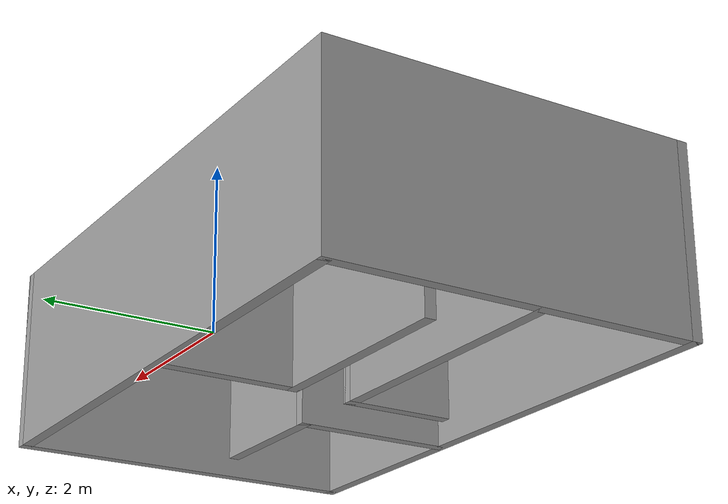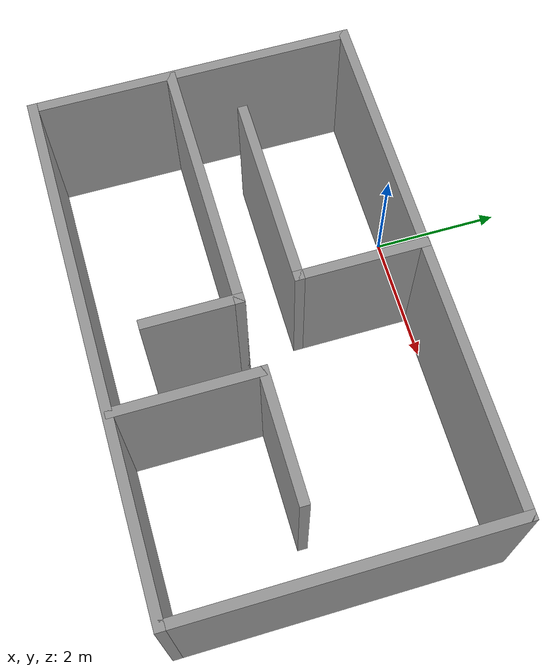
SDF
<?xml version='1.0'?>
<sdf version='1.7'>
  <model name='room'>
    <pose>1.475 -2.375 0 0 -0 0</pose>
    <link name='Wall_0'>
      <collision name='Wall_0_Collision'>
        <geometry>
          <box>
            <size>8 0.15 2.5</size>
          </box>
        </geometry>
        <pose>0 0 1.25 0 -0 0</pose>
      </collision>
      <visual name='Wall_0_Visual'>
        <pose>0 0 1.25 0 -0 0</pose>
        <geometry>
          <box>
            <size>8 0.15 2.5</size>
          </box>
        </geometry>
        <material>
          <script>
            <uri>file://media/materials/scripts/gazebo.material</uri>
            <name>Gazebo/Grey</name>
          </script>
          <ambient>1 1 1 1</ambient>
        </material>
        <meta>
          <layer>0</layer>
        </meta>
      </visual>
      <pose>0 2.425 0 0 -0 0</pose>
    </link>
    <link name='Wall_10'>
      <collision name='Wall_10_Collision'>
        <geometry>
          <box>
            <size>3 0.15 2.5</size>
          </box>
        </geometry>
        <pose>0 0 1.25 0 -0 0</pose>
      </collision>
      <visual name='Wall_10_Visual'>
        <pose>0 0 1.25 0 -0 0</pose>
        <geometry>
          <box>
            <size>3 0.15 2.5</size>
          </box>
        </geometry>
        <material>
          <script>
            <uri>file://media/materials/scripts/gazebo.material</uri>
            <name>Gazebo/Grey</name>
          </script>
          <ambient>1 1 1 1</ambient>
        </material>
        <meta>
          <layer>0</layer>
        </meta>
      </visual>
      <pose>-1.58378 0.573251 0 0 -0 3.14159</pose>
    </link>
    <link name='Wall_12'>
      <collision name='Wall_12_Collision'>
        <geometry>
          <box>
            <size>4 0.15 2.5</size>
          </box>
        </geometry>
        <pose>0 0 1.25 0 -0 0</pose>
      </collision>
      <visual name='Wall_12_Visual'>
        <pose>0 0 1.25 0 -0 0</pose>
        <geometry>
          <box>
            <size>4 0.15 2.5</size>
          </box>
        </geometry>
        <material>
          <script>
            <uri>file://media/materials/scripts/gazebo.material</uri>
            <name>Gazebo/Grey</name>
          </script>
          <ambient>1 1 1 1</ambient>
        </material>
        <meta>
          <layer>0</layer>
        </meta>
      </visual>
      <pose>-1.97513 -0.314324 0 0 -0 0</pose>
    </link>
    <link name='Wall_13'>
      <collision name='Wall_13_Collision'>
        <geometry>
          <box>
            <size>1.5 0.15 2.5</size>
          </box>
        </geometry>
        <pose>0 0 1.25 0 -0 0</pose>
      </collision>
      <visual name='Wall_13_Visual'>
        <pose>0 0 1.25 0 -0 0</pose>
        <geometry>
          <box>
            <size>1.5 0.15 2.5</size>
          </box>
        </geometry>
        <material>
          <script>
            <uri>file://media/materials/scripts/gazebo.material</uri>
            <name>Gazebo/Grey</name>
          </script>
          <ambient>1 1 1 1</ambient>
        </material>
        <meta>
          <layer>0</layer>
        </meta>
      </visual>
      <pose>-0.050133 -0.989324 0 0 -0 -1.5708</pose>
    </link>
    <link name='Wall_15'>
      <collision name='Wall_15_Collision'>
        <geometry>
          <box>
            <size>2.25 0.15 2.5</size>
          </box>
        </geometry>
        <pose>0 0 1.25 0 -0 0</pose>
      </collision>
      <visual name='Wall_15_Visual'>
        <pose>0 0 1.25 0 -0 0</pose>
        <geometry>
          <box>
            <size>2.25 0.15 2.5</size>
          </box>
        </geometry>
        <material>
          <script>
            <uri>file://media/materials/scripts/gazebo.material</uri>
            <name>Gazebo/Grey</name>
          </script>
          <ambient>1 1 1 1</ambient>
        </material>
        <meta>
          <layer>0</layer>
        </meta>
      </visual>
      <pose>1.07313 -1.33271 0 0 -0 1.5708</pose>
    </link>
    <link name='Wall_16'>
      <collision name='Wall_16_Collision'>
        <geometry>
          <box>
            <size>2 0.15 2.5</size>
          </box>
        </geometry>
        <pose>0 0 1.25 0 -0 0</pose>
      </collision>
      <visual name='Wall_16_Visual'>
        <pose>0 0 1.25 0 -0 0</pose>
        <geometry>
          <box>
            <size>2 0.15 2.5</size>
          </box>
        </geometry>
        <material>
          <script>
            <uri>file://media/materials/scripts/gazebo.material</uri>
            <name>Gazebo/Grey</name>
          </script>
          <ambient>1 1 1 1</ambient>
        </material>
        <meta>
          <layer>0</layer>
        </meta>
      </visual>
      <pose>1.99813 -0.282714 0 0 -0 0</pose>
    </link>
    <link name='Wall_3'>
      <collision name='Wall_3_Collision'>
        <geometry>
          <box>
            <size>5 0.15 2.5</size>
          </box>
        </geometry>
        <pose>0 0 1.25 0 -0 0</pose>
      </collision>
      <visual name='Wall_3_Visual'>
        <pose>0 0 1.25 0 -0 0</pose>
        <geometry>
          <box>
            <size>5 0.15 2.5</size>
          </box>
        </geometry>
        <material>
          <script>
            <uri>file://media/materials/scripts/gazebo.material</uri>
            <name>Gazebo/Grey</name>
          </script>
          <ambient>1 1 1 1</ambient>
        </material>
        <meta>
          <layer>0</layer>
        </meta>
      </visual>
      <pose>3.925 -0 0 0 -0 -1.5708</pose>
    </link>
    <link name='Wall_4'>
      <collision name='Wall_4_Collision'>
        <geometry>
          <box>
            <size>8 0.15 2.5</size>
          </box>
        </geometry>
        <pose>0 0 1.25 0 -0 0</pose>
      </collision>
      <visual name='Wall_4_Visual'>
        <pose>0 0 1.25 0 -0 0</pose>
        <geometry>
          <box>
            <size>8 0.15 2.5</size>
          </box>
        </geometry>
        <material>
          <script>
            <uri>file://media/materials/scripts/gazebo.material</uri>
            <name>Gazebo/Grey</name>
          </script>
          <ambient>1 1 1 1</ambient>
        </material>
        <meta>
          <layer>0</layer>
        </meta>
      </visual>
      <pose>0 -2.425 0 0 -0 3.14159</pose>
    </link>
    <link name='Wall_5'>
      <collision name='Wall_5_Collision'>
        <geometry>
          <box>
            <size>5 0.15 2.5</size>
          </box>
        </geometry>
        <pose>0 0 1.25 0 -0 0</pose>
      </collision>
      <visual name='Wall_5_Visual'>
        <pose>0 0 1.25 0 -0 0</pose>
        <geometry>
          <box>
            <size>5 0.15 2.5</size>
          </box>
        </geometry>
        <material>
          <script>
            <uri>file://media/materials/scripts/gazebo.material</uri>
            <name>Gazebo/Grey</name>
          </script>
          <ambient>1 1 1 1</ambient>
        </material>
        <meta>
          <layer>0</layer>
        </meta>
      </visual>
      <pose>-3.925 -0 0 0 -0 1.5708</pose>
    </link>
    <link name='Wall_9'>
      <collision name='Wall_9_Collision'>
        <geometry>
          <box>
            <size>2 0.15 2.5</size>
          </box>
        </geometry>
        <pose>0 0 1.25 0 -0 0</pose>
      </collision>
      <visual name='Wall_9_Visual'>
        <pose>0 0 1.25 0 -0 0</pose>
        <geometry>
          <box>
            <size>2 0.15 2.5</size>
          </box>
        </geometry>
        <material>
          <script>
            <uri>file://media/materials/scripts/gazebo.material</uri>
            <name>Gazebo/Grey</name>
          </script>
          <ambient>1 1 1 1</ambient>
        </material>
        <meta>
          <layer>0</layer>
        </meta>
      </visual>
      <pose>-0.158781 1.49825 0 0 -0 -1.5708</pose>
    </link>
    <static>1</static>
  </model>
</sdf>
